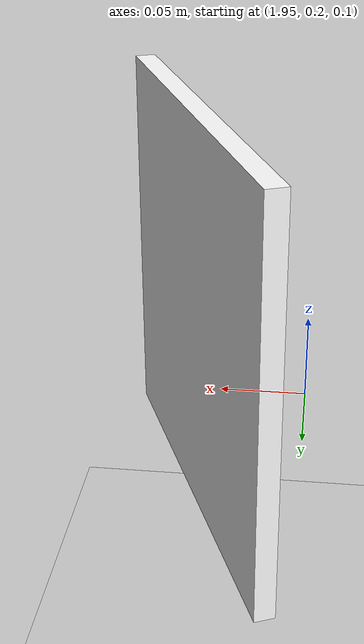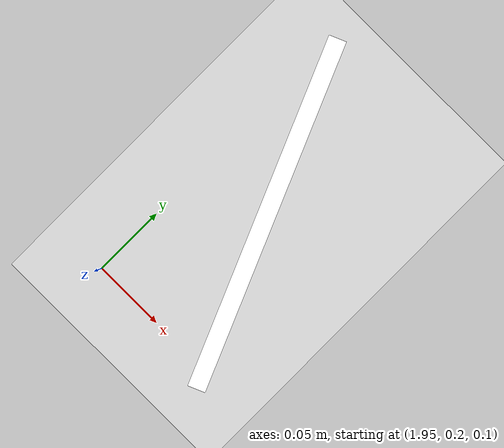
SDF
<?xml version="1.0" ?>
<sdf version="1.6">
  <world name="default">
    <plugin
      filename="gz-sim-physics-system"
      name="gz::sim::systems::Physics">
    </plugin>
    <plugin
      filename="gz-sim-user-commands-system"
      name="gz::sim::systems::UserCommands">
    </plugin>
    <plugin
      filename="gz-sim-scene-broadcaster-system"
      name="gz::sim::systems::SceneBroadcaster">
    </plugin>
    <plugin
      filename="gz-sim-sensors-system"
      name="gz::sim::systems::Sensors">
      <render_engine>ogre2</render_engine>
    </plugin>

    <include>
      <uri>https://fuel.gazebosim.org/1.0/OpenRobotics/models/Sun</uri>
    </include>
    <include>
      <uri>https://fuel.gazebosim.org/1.0/OpenRobotics/models/Ground Plane</uri>
    </include>
    <include>
      <uri>model://aruco_marker</uri>
      <pose>2 0.3 0.2 0 -1.57 0.4</pose>
    </include>
  </world>
</sdf>

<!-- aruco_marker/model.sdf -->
<sdf version="1.6">
  <model name="aruco_marker">
    <static>true</static>
    <link name="link">
      <collision name="collision">
        <geometry>
          <box>
            <size>0.2 0.2 0.01</size>
          </box>
        </geometry>
      </collision>
      <visual name="visual">
        <geometry>
          <box>
            <size>0.2 0.2 0.01</size>
          </box>
        </geometry>
        <material>
          <ambient>1 1 1 1</ambient>
          <diffuse>1 1 1 1</diffuse>
          <specular>0 0 0 1</specular>
          <pbr>
            <metal>
              <albedo_map>materials/textures/marker.png</albedo_map>
            </metal>
          </pbr>
        </material>
      </visual>
    </link>
  </model>
</sdf>
